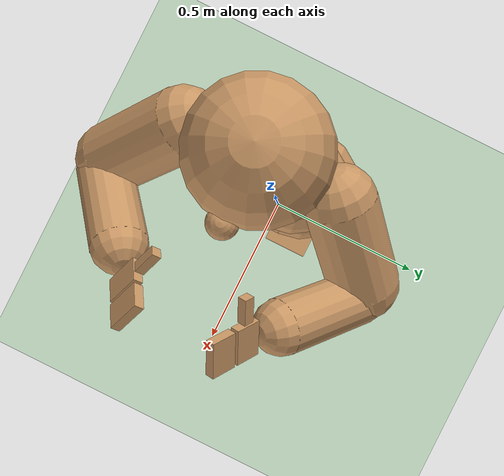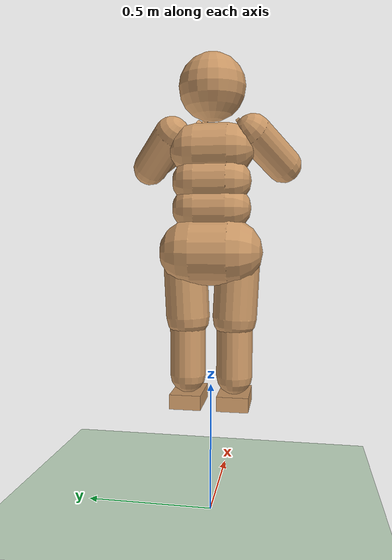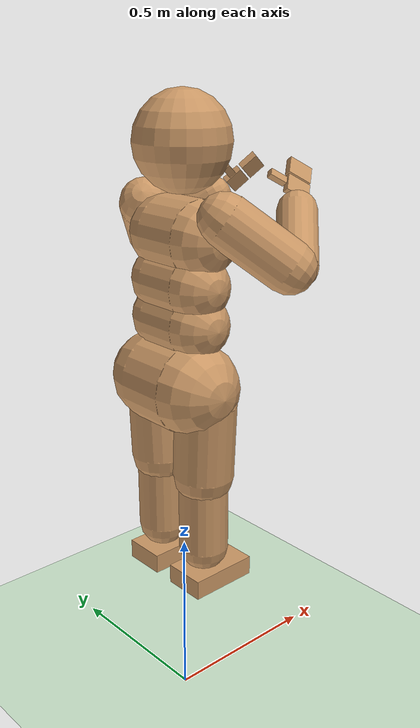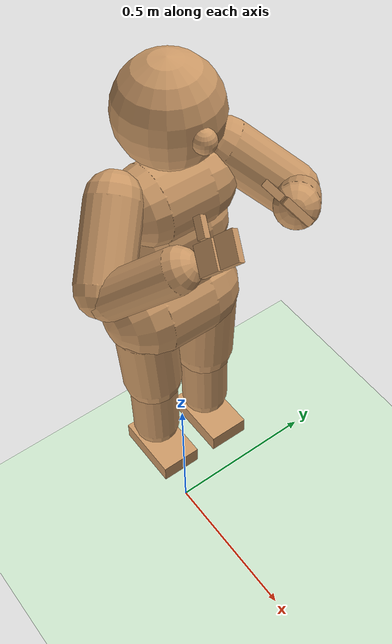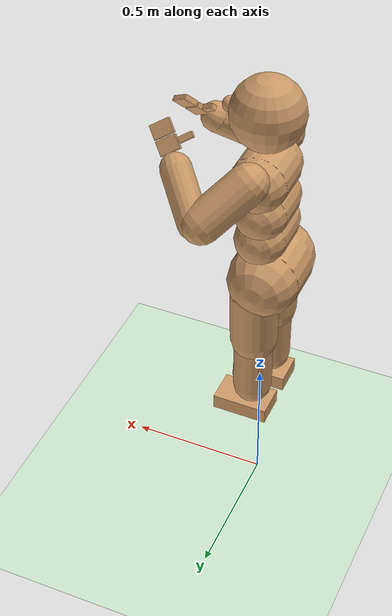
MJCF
<mujoco model="humanoid">
    <compiler angle="degree" inertiafromgeom="true" />
    <default>
        <joint armature="1" damping="1" limited="true" />
        <geom conaffinity="1" condim="1" contype="1" margin="0.001" material="geom" rgba="0.8 0.6 .4 1" />
        <motor ctrllimited="true" ctrlrange="-.4 .4" />
    </default>
    <option integrator="RK4" iterations="50" solver="PGS" timestep="0.003">

    </option>
    <size nkey="5" nuser_geom="1" />
    <visual>
        <map fogend="5" fogstart="3" />
    </visual>
    <asset>
        <texture builtin="gradient" height="100" rgb1=".4 .5 .6" rgb2="0 0 0" type="skybox" width="100" />

        <texture builtin="flat" height="1278" mark="cross" markrgb="1 1 1" name="texgeom" random="0.01" rgb1="0.8 0.6 0.4" rgb2="0.8 0.6 0.4" type="cube" width="127" />
        <texture builtin="checker" height="100" name="texplane" rgb1="0 0 0" rgb2="0.8 0.8 0.8" type="2d" width="100" />
        <material name="MatPlane" reflectance="0.5" shininess="1" specular="1" texrepeat="60 60" texture="texplane" />
        <material name="geom" texture="texgeom" texuniform="true" />
    </asset>
    <worldbody>
        <light cutoff="100" diffuse="1 1 1" dir="-0 0 -1.3" directional="true" exponent="1" pos="0 0 1.3" specular=".1 .1 .1" />

        <geom condim="4" friction="2.5 1 1" material="MatPlane" name="floor" pos="0 0 0" rgba="0.8 0.9 0.8 1" size="20 20 0.125" type="plane" />

    <body name="torso" pos="0 0 1.4">
    <joint armature="0" damping="0" limited="false" name="root" pos="0 0 0" stiffness="0" type="free" />
        <geom fromto="0 -0.063 0 0 0.063 0" name="torso1" size="0.098" type="capsule" />
        <geom fromto="-.01 -.06 -.12 -.01 .06 -.12" name="uwaist" size="0.090" type="capsule" />
    <body name="head" pos="0 0 0">
        <joint armature="0.01" axis="0 1 0" name="neck_y" pos="0 0 0" range="-45 60" stiffness="1" type="hinge" />
        <joint armature="0.01" axis="0 0 1" name="neck_z" pos="0 0 0" range="-75 75" stiffness="1" type="hinge" />
        <joint armature="0.01" axis="1 0 0" name="neck_x" pos="0 0 0" range="-25 25" stiffness="1" type="hinge" />
        <geom name="head1" pos="0 0 0.228" size="0.126" type="sphere" user="258" />
        <geom name="nose" pos="0.126 0 0.228" size="0.028" type="sphere" />
    </body><body name="lwaist" pos="-.01 0 -0.221" quat="1.000 0 -0.002 0">
        <geom fromto="0 -0.060 0 0 0.060 0" name="lwaist" size="0.090" type="capsule" />
        <joint armature="0.02" axis="0 0 1" damping="5" name="abdomen_z" pos="0 0 0.065" range="-45 45" stiffness="20" type="hinge" />
        <joint armature="0.02" axis="0 1 0" damping="5" name="abdomen_y" pos="0 0 0.065" range="-75 30" stiffness="10" type="hinge" />
        <body name="pelvis" pos="0 0 -0.165" quat="1.000 0 -0.002 0">
            <joint armature="0.02" axis="1 0 0" damping="5" name="abdomen_x" pos="0 0 0.1" range="-35 35" stiffness="10" type="hinge" />
            <joint armature="0.02" axis="0 1 0" damping="5" name="abdomen_y2" pos="0 0 0.065" range="-75 30" stiffness="20" type="hinge" />
            <geom fromto="-.02 -0.070 0 -.02 0.070 0" name="butt" size="0.126" type="capsule" />
        <body name="right_thigh" pos="0 -0.100 -0.04">
        <joint armature="0.01" axis="1 0 0" damping="5" name="right_hip_x" pos="0 0 0" range="-45 5" stiffness="10" type="hinge" />
        <joint armature="0.01" axis="0 0 1" damping="5" name="right_hip_z" pos="0 0 0" range="-85 35" stiffness="10" type="hinge" />
        <joint armature="0.0080" axis="0 1 0" damping="5" name="right_hip_y" pos="0 0 0" range="-110 75" stiffness="20" type="hinge" />
        <geom fromto="0 0 0 0 0.010 -0.211" name="right_thigh1" size="0.084" type="capsule" />
        <body name="right_shin" pos="0 0.010 -0.250">
            <joint armature="0.0060" axis="0 -1 0" name="right_knee" pos="0 0 .02" range="-160 -2" type="hinge" />
            <geom fromto="0 0 0 0 0 -0.186" name="right_shin1" size="0.069" type="capsule" />
        <body name="right_foot" pos="0 0 -0.279">
                    <joint armature="0.01" axis="0 1 0" name="right_foot_y" pos="0 0 0" range="-45 20" stiffness="20" type="hinge" />
                    <joint armature="0.01" axis="1 0 0" name="right_foot_x" pos="0 0 0" range="-35 35" stiffness="20" type="hinge" />
                    <geom name="right_foot" pos="0.025 0 0" size="0.100 0.060 0.028" type="box" user="0" />
                </body></body>
    </body><body name="left_thigh" pos="0 0.100 -0.04">
        <joint armature="0.01" axis="-1 0 0" damping="5" name="left_hip_x" pos="0 0 0" range="-45 5" stiffness="10" type="hinge" />
        <joint armature="0.01" axis="0 0 -1" damping="5" name="left_hip_z" pos="0 0 0" range="-85 35" stiffness="10" type="hinge" />
        <joint armature="0.0080" axis="0 1 0" damping="5" name="left_hip_y" pos="0 0 0" range="-110 75" stiffness="20" type="hinge" />
        <geom fromto="0 0 0 0 -0.010 -0.211" name="left_thigh1" size="0.084" type="capsule" />
        <body name="left_shin" pos="0 -0.010 -0.250">
            <joint armature="0.0060" axis="0 -1 0" name="left_knee" pos="0 0 .02" range="-160 -2" type="hinge" />
            <geom fromto="0 0 0 0 0 -0.186" name="left_shin1" size="0.069" type="capsule" />
        <body name="left_foot" pos="0 0 -0.279">
                    <joint armature="0.01" axis="0 1 0" name="left_foot_y" pos="0 0 0" range="-45 20" stiffness="20" type="hinge" />
                    <joint armature="0.01" axis="1 0 0" name="left_foot_x" pos="0 0 0" range="-35 35" stiffness="20" type="hinge" />
                    <geom name="left_foot" pos="0.025 0 0" size="0.100 0.060 0.028" type="box" user="0" />
                </body></body>
    </body></body>
    </body><body name="right_upper_arm" pos="0 -0.153 0.06">
        <joint armature="0.0068" axis="2 1 1" name="right_shoulder1" pos="0 0 0" range="-85 60" stiffness="1" type="hinge" />
        <joint armature="0.0051" axis="0 -1 1" name="right_shoulder2" pos="0 0 0" range="-85 60" stiffness="1" type="hinge" />
        <joint armature="0.0051" axis="0 -1 0" name="right_shoulder3" pos="0 0 0" range="0 120" stiffness="1" type="hinge" />
        <geom fromto="0 0 0 0.112 -0.112 -0.112" name="right_uarm1" size="0.068 0.272" type="capsule" />
        <body name="right_lower_arm" pos="0.126 -0.126 -0.126">
            <joint armature="0.0028" axis="0 -1 1" name="right_elbow" pos="0 0 0" range="-90 50" stiffness="0" type="hinge" />
            <geom fromto="0.01 0.010 0.01 0.119 0.119 0.119" name="right_larm" size="0.053" type="capsule" />
            <camera pos="0 0 0" />
        <body name="right_hand" pos="0.165 0.165 0.165" quat="0.844 0.437 0.144 -0.277">
            <joint axis="1 0 0" name="right_wrist_x" pos="0 -0.039 0" range="-80 80" type="hinge" />
            <joint axis="0 1 0" name="right_wrist_y" pos="0 -0.039 0" range="-30 130" type="hinge" />

            <geom name="right_hand1" size="0.035 0.025 0.009" type="box" />
            <body name="right_fingers" pos="0 0.056 0">
                <joint axis="1 0 0" name="right_knuckles" pos="0 -0.025 0" range="-90 10" type="hinge" />
                <geom name="right_fingers" pos="0 0 0" size="0.035 0.025 0.009" type="box" />
            </body>
            <body name="right_thumb" pos="-0.064 0 0">
                <joint axis="0 1 0" name="right_thumb_y" pos="0.025 0 0" range="-90 0" type="hinge" />
                <geom name="right_thumb1" pos="0 0 0" size="0.025 0.010 0.009" type="box" />
            </body>
        </body></body>
    </body><body name="left_upper_arm" pos="0 0.153 0.06">
        <joint armature="0.0068" axis="2 -1 1" name="left_shoulder1" pos="0 0 0" range="-60 85" stiffness="1" type="hinge" />
        <joint armature="0.0051" axis="0 1 1" name="left_shoulder2" pos="0 0 0" range="-60 85" stiffness="1" type="hinge" />
        <joint armature="0.0051" axis="0 -1 0" name="left_shoulder3" pos="0 0 0" range="0 120" stiffness="1" type="hinge" />
        <geom fromto="0 0 0 0.112 0.112 -0.112" name="left_uarm1" size="0.068 0.272" type="capsule" />
        <body name="left_lower_arm" pos="0.126 0.126 -0.126">
            <joint armature="0.0028" axis="0 -1 -1" name="left_elbow" pos="0 0 0" range="-90 50" stiffness="0" type="hinge" />
            <geom fromto="0.01 -0.010 0.01 0.119 -0.119 0.119" name="left_larm" size="0.053" type="capsule" />
        <body name="left_hand" pos="0.165 -0.165 0.165" quat="0.844 -0.437 0.144 0.277">
            <joint axis="1 0 0" name="left_wrist_x" pos="0 0.039 0" range="-80 80" type="hinge" />
            <joint axis="0 1 0" name="left_wrist_y" pos="0 0.039 0" range="-30 130" type="hinge" />

            <geom name="left_hand1" size="0.035 0.025 0.009" type="box" />
            <body name="left_fingers" pos="0 -0.056 0">
                <joint axis="-1 0 0" name="left_knuckles" pos="0 0.025 0" range="-90 10" type="hinge" />
                <geom name="left_fingers" pos="0 0 0" size="0.035 0.025 0.009" type="box" />
            </body>
            <body name="left_thumb" pos="-0.064 0 0">
                <joint axis="0 1 0" name="left_thumb_y" pos="0.025 0 0" range="-90 0" type="hinge" />
                <geom name="left_thumb1" pos="0 0 0" size="0.025 0.010 0.009" type="box" />
            </body>
        </body></body>
    </body></body></worldbody>
    <tendon>
        <fixed name="left_hipknee">
            <joint coef="-1" joint="left_hip_y" />
            <joint coef="1" joint="left_knee" />
        </fixed>
        <fixed name="right_hipknee">
            <joint coef="-1" joint="right_hip_y" />
            <joint coef="1" joint="right_knee" />
        </fixed>
        <fixed name="neck_y" stiffness="4.5">
            <joint coef="2" joint="neck_y" />
        </fixed>
        <fixed name="neck_x" stiffness="2">
            <joint coef="2" joint="neck_x" />
        </fixed>
        <fixed name="neck_z" stiffness="2">
            <joint coef="2" joint="neck_z" />
        </fixed>
        <fixed name="abdomen" stiffness="2">
            <joint coef="1" joint="abdomen_x" />
            <joint coef="1" joint="abdomen_y" />
            <joint coef="1" joint="abdomen_z" />
        </fixed>
    </tendon>
    <contact>
        <exclude body1="torso" body2="lwaist" />
        <exclude body1="lwaist" body2="pelvis" />
        <exclude body1="pelvis" body2="right_thigh" />
        <exclude body1="pelvis" body2="left_thigh" />
    </contact>
<actuator>
        <motor ctrllimited="true" ctrlrange="-0.600 0.600" gear="100" joint="neck_y" name="neck_y" />
        <motor ctrllimited="true" ctrlrange="-0.600 0.600" gear="100" joint="neck_z" name="neck_z" />
        <motor ctrllimited="true" ctrlrange="-0.600 0.600" gear="100" joint="neck_x" name="neck_x" />
        <motor ctrllimited="true" ctrlrange="-1.600 1.600" gear="100" joint="abdomen_y" name="abdomen_y" />
        <motor ctrllimited="true" ctrlrange="-1.600 1.600" gear="100" joint="abdomen_y2" name="abdomen_y2" />
        <motor ctrllimited="true" ctrlrange="-1.600 1.600" gear="100" joint="abdomen_z" name="abdomen_z" />
        <motor ctrllimited="true" ctrlrange="-1.600 1.600" gear="100" joint="abdomen_x" name="abdomen_x" />
        <motor ctrllimited="true" ctrlrange="-0.640 0.640" gear="100" joint="right_hip_x" name="right_hip_x" />
        <motor ctrllimited="true" ctrlrange="-0.640 0.640" gear="100" joint="right_hip_z" name="right_hip_z" />
        <motor ctrllimited="true" ctrlrange="-0.640 0.640" gear="300" joint="right_hip_y" name="right_hip_y" />
        <motor ctrllimited="true" ctrlrange="-0.640 0.640" gear="200" joint="right_knee" name="right_knee" />
        <motor ctrllimited="true" ctrlrange="-0.640 0.640" gear="100" joint="left_hip_x" name="left_hip_x" />
        <motor ctrllimited="true" ctrlrange="-0.640 0.640" gear="100" joint="left_hip_z" name="left_hip_z" />
        <motor ctrllimited="true" ctrlrange="-0.640 0.640" gear="300" joint="left_hip_y" name="left_hip_y" />
        <motor ctrllimited="true" ctrlrange="-0.640 0.640" gear="200" joint="left_knee" name="left_knee" />
        <motor ctrllimited="true" ctrlrange="-1.400 1.400" gear="25" joint="right_shoulder1" name="right_shoulder1" />
        <motor ctrllimited="true" ctrlrange="-1.400 1.400" gear="25" joint="right_shoulder2" name="right_shoulder2" />
        <motor ctrllimited="true" ctrlrange="-1.400 1.400" gear="25" joint="right_shoulder3" name="right_shoulder3" />
        <motor ctrllimited="true" ctrlrange="-1.800 1.800" gear="25" joint="right_elbow" name="right_elbow" />
        <motor ctrllimited="true" ctrlrange="-1.400 1.400" gear="25" joint="left_shoulder1" name="left_shoulder1" />
        <motor ctrllimited="true" ctrlrange="-1.400 1.400" gear="25" joint="left_shoulder2" name="left_shoulder2" />
        <motor ctrllimited="true" ctrlrange="-1.400 1.400" gear="25" joint="left_shoulder3" name="left_shoulder3" />
        <motor ctrllimited="true" ctrlrange="-1.800 1.800" gear="25" joint="left_elbow" name="left_elbow" />
                <motor ctrllimited="true" ctrlrange="-0.400 0.400" gear="25" joint="right_wrist_x" name="right_wrist_x" />
        <motor ctrllimited="true" ctrlrange="-0.400 0.400" gear="25" joint="right_wrist_y" name="right_wrist_y" />
        <motor ctrllimited="true" ctrlrange="-0.400 0.400" gear="25" joint="right_knuckles" name="right_knuckles" />
        <motor ctrllimited="true" ctrlrange="-0.400 0.400" gear="25" joint="right_thumb_y" name="right_thumb_y" />
        <motor ctrllimited="true" ctrlrange="-0.400 0.400" gear="25" joint="left_wrist_x" name="left_wrist_x" />
        <motor ctrllimited="true" ctrlrange="-0.400 0.400" gear="25" joint="left_wrist_y" name="left_wrist_y" />
        <motor ctrllimited="true" ctrlrange="-0.400 0.400" gear="25" joint="left_knuckles" name="left_knuckles" />
        <motor ctrllimited="true" ctrlrange="-0.400 0.400" gear="25" joint="left_thumb_y" name="left_thumb_y" />
                <motor ctrllimited="true" ctrlrange="-1.600 1.600" gear="25" joint="right_foot_y" name="right_foot_y" />
        <motor ctrllimited="true" ctrlrange="-1.600 1.600" gear="25" joint="right_foot_x" name="right_foot_x" />
        <motor ctrllimited="true" ctrlrange="-1.600 1.600" gear="25" joint="left_foot_y" name="left_foot_y" />
        <motor ctrllimited="true" ctrlrange="-1.600 1.600" gear="25" joint="left_foot_x" name="left_foot_x" />
            </actuator></mujoco>
